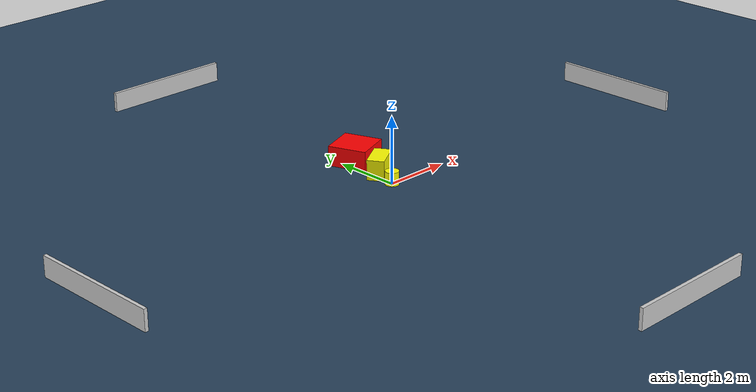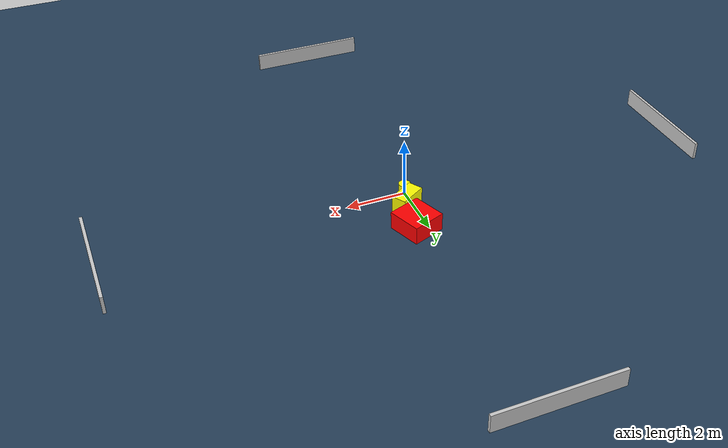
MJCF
<?xml version="1.0" ?>
<mujoco model="generated_environment">
  <option timestep="0.01" integrator="RK4" cone="elliptic"/>
  <default>
    <geom density="1"/>
  </default>
  <asset>
    <texture builtin="gradient" height="3072" name="skybox" rgb1="0.3 0.5 0.7" rgb2="0 0 0" type="skybox" width="512"/>
    <texture builtin="checker" height="300" name="groundplane" rgb1="0.2 0.3 0.4" rgb2="0.1 0.2 0.3" type="2d" width="300"/>
    <material name="groundplane" reflectance="0.2" texrepeat="5 5" texture="groundplane"/>
  </asset>
  <worldbody>
    <light dir="0 0 -1" directional="true" pos="0 0 1.5"/>
    <geom condim="3" friction="0.5 0.005 0.001" material="groundplane" name="floor" pos="0 0 0" size="0 0 0.05" type="plane"/>
    <body name="walls">
      <geom name="wall_1" condim="4" pos="-10.0 0.0 0.3" rgba="0.800000011920929 0.800000011920929 0.800000011920929 1.0" size="0.05 2.0 0.3" type="box"/>
      <geom name="wall_2" condim="4" pos="10.0 0.0 0.3" rgba="0.800000011920929 0.800000011920929 0.800000011920929 1.0" size="0.05 2.0 0.3" type="box"/>
      <geom name="wall_3" condim="4" pos="0.0 -10.0 0.3" rgba="0.800000011920929 0.800000011920929 0.800000011920929 1.0" size="2.0 0.05 0.3" type="box"/>
      <geom name="wall_4" condim="4" pos="0.0 10.0 0.3" rgba="0.800000011920929 0.800000011920929 0.800000011920929 1.0" size="2.0 0.05 0.3" type="box"/>
    </body>
    <body name="robot">
      <joint name="joint_x" type="slide" pos="0 0 0" axis="1 0 0"/>
      <joint name="joint_y" type="slide" pos="0 0 0" axis="0 1 0"/>
      <geom name="robot" type="cylinder" pos="0.0 0.0 0.2" size="0.2 0.2 0.0" mass="5.0" friction="1.0 0.005 0.0001" condim="4" rgba="1.0 1.0 0.0 1.0"/>
    </body>
    <body name="obstacle_1_movable">
      <geom name="obstacle_1_movable" condim="4" pos="0.22231945712476667 0.7262891122920181 0.3" euler="0 0 121.55762140216379" friction="0.0 0.005 0.001" rgba="1.0 1.0 0.0 1.0" size="0.25212779038239175 0.4697370073262073 0.3" type="box" mass="0.1"/>
      <joint type="free"/>
    </body>
    <body name="obstacle_2_static">
      <geom name="obstacle_2_static" condim="4" pos="0.3833893233981268 1.8606578134005376 0.3" euler="0 0 20.527121391589326" friction="0.0 0.005 0.001" rgba="1.0 0.0 0.0 1.0" size="0.556527605545282 0.5750875845921953 0.3" type="box"/>
    </body>
  </worldbody>
  <actuator>
    <motor name="actuator_x" joint="joint_x" gear="1" ctrlrange="-1 1"/>
    <motor name="actuator_y" joint="joint_y" gear="1" ctrlrange="-1 1"/>
  </actuator>
</mujoco>
